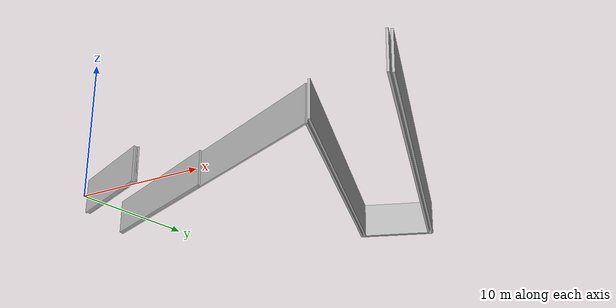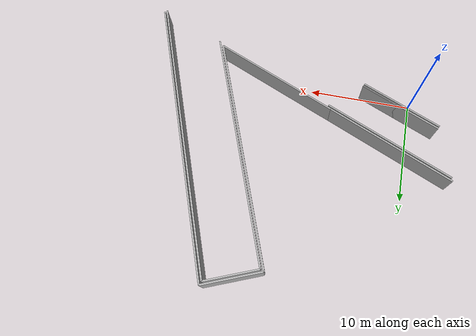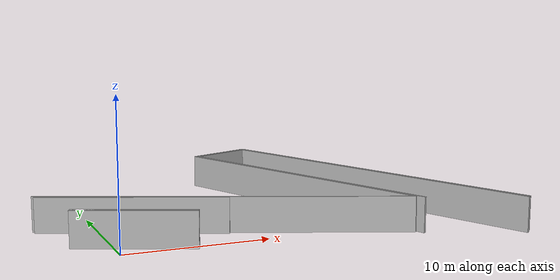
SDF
<?xml version="1.0" ?>
<sdf version="1.6">
  <model name="sps_0510">
    <pose frame="">0 0 0 0 -0 0</pose>
    <static>1</static>
    <self_collide>0</self_collide>
    <allow_auto_disable>0</allow_auto_disable>
    <link name="Wall76">
      <kinematic>0</kinematic>
      <gravity>1</gravity>
      <self_collide>0</self_collide>
      <collision name="collision">
        <geometry>
          <box>
            <size>5.00004 0.15 2.5</size>
          </box>
        </geometry>
        <pose frame="">0 0 0 0 -0 0</pose>
      </collision>
      <visual name="visual">
        <geometry>
          <box>
            <size>5.00004 0.15 2.5</size>
          </box>
        </geometry>
        <pose frame="">0 0 0 0 -0 0</pose>
        <cast_shadows>1</cast_shadows>
        <transparency>0.0</transparency>
      </visual>
      <pose frame="">13.8613 19.847 1.25 0 -0 0.385421</pose>
    </link>
    <link name="Wall400">
      <kinematic>0</kinematic>
      <gravity>1</gravity>
      <self_collide>0</self_collide>
      <collision name="collision">
        <geometry>
          <box>
            <size>23.3433 0.15 2.5</size>
          </box>
        </geometry>
        <pose frame="">0 0 0 0 -0 0</pose>
      </collision>
      <visual name="visual">
        <geometry>
          <box>
            <size>23.3433 0.15 2.5</size>
          </box>
        </geometry>
        <pose frame="">0 0 0 0 -0 0</pose>
        <cast_shadows>1</cast_shadows>
        <transparency>0.0</transparency>
      </visual>
      <pose frame="">15.9322 8.09151 1.25 0 -0 1.95618</pose>
    </link>
    <link name="Wall1602">
      <kinematic>0</kinematic>
      <gravity>1</gravity>
      <self_collide>0</self_collide>
      <collision name="collision">
        <geometry>
          <box>
            <size>22.9885 0.15 2.5</size>
          </box>
        </geometry>
        <pose frame="">0 0 0 0 -0 0</pose>
      </collision>
      <visual name="visual">
        <geometry>
          <box>
            <size>22.9885 0.15 2.5</size>
          </box>
        </geometry>
        <pose frame="">0 0 0 0 -0 0</pose>
        <cast_shadows>1</cast_shadows>
        <transparency>0.0</transparency>
      </visual>
      <pose frame="">15.5398 8.394 1.25 0 -0 1.9562</pose>
    </link>
    <link name="Wall2245">
      <kinematic>0</kinematic>
      <gravity>1</gravity>
      <self_collide>0</self_collide>
      <collision name="collision">
        <geometry>
          <box>
            <size>5.50043 0.15 2.5</size>
          </box>
        </geometry>
        <pose frame="">0 0 0 0 -0 0</pose>
      </collision>
      <visual name="visual">
        <geometry>
          <box>
            <size>5.50043 0.15 2.5</size>
          </box>
        </geometry>
        <pose frame="">0 0 0 0 -0 0</pose>
        <cast_shadows>1</cast_shadows>
        <transparency>0.0</transparency>
      </visual>
      <pose frame="">13.7674 20.0789 1.25 0 -0 0.385359</pose>
    </link>
    <link name="Wall2248">
      <kinematic>0</kinematic>
      <gravity>1</gravity>
      <self_collide>0</self_collide>
      <collision name="collision">
        <geometry>
          <box>
            <size>28.3194 0.15 2.5</size>
          </box>
        </geometry>
        <pose frame="">0 0 0 0 -0 0</pose>
      </collision>
      <visual name="visual">
        <geometry>
          <box>
            <size>28.3194 0.15 2.5</size>
          </box>
        </geometry>
        <pose frame="">0 0 0 0 -0 0</pose>
        <cast_shadows>1</cast_shadows>
        <transparency>0.0</transparency>
      </visual>
      <pose frame="">21.5011 7.66588 1.25 0 0 -1.18539</pose>
    </link>
    <link name="Wall2249">
      <kinematic>0</kinematic>
      <gravity>1</gravity>
      <self_collide>0</self_collide>
      <collision name="collision">
        <geometry>
          <box>
            <size>28.4649 0.15 2.5</size>
          </box>
        </geometry>
        <pose frame="">0 0 0 0 -0 0</pose>
      </collision>
      <visual name="visual">
        <geometry>
          <box>
            <size>28.4649 0.15 2.5</size>
          </box>
        </geometry>
        <pose frame="">0 0 0 0 -0 0</pose>
        <cast_shadows>1</cast_shadows>
        <transparency>0.0</transparency>
      </visual>
      <pose frame="">21.666 7.92409 1.25 0 0 -1.18542</pose>
    </link>
    <link name="Wall4317">
      <kinematic>0</kinematic>
      <gravity>1</gravity>
      <self_collide>0</self_collide>
      <collision name="collision">
        <geometry>
          <box>
            <size>13.2302 0.15 2.5</size>
          </box>
        </geometry>
        <pose frame="">0 0 0 0 -0 0</pose>
      </collision>
      <visual name="visual">
        <geometry>
          <box>
            <size>13.2302 0.15 2.5</size>
          </box>
        </geometry>
        <pose frame="">0 0 0 0 -0 0</pose>
        <cast_shadows>1</cast_shadows>
        <transparency>0.0</transparency>
      </visual>
      <pose frame="">2.08465 5.10698 1.25 0 0 -0.407209</pose>
    </link>
    <link name="Wall4324">
      <kinematic>0</kinematic>
      <gravity>1</gravity>
      <self_collide>0</self_collide>
      <collision name="collision">
        <geometry>
          <box>
            <size>8.26104 0.15 2.5</size>
          </box>
        </geometry>
        <pose frame="">0 0 0 0 -0 0</pose>
      </collision>
      <visual name="visual">
        <geometry>
          <box>
            <size>8.26104 0.15 2.5</size>
          </box>
        </geometry>
        <pose frame="">0 0 0 0 -0 0</pose>
        <cast_shadows>1</cast_shadows>
        <transparency>0.0</transparency>
      </visual>
      <pose frame="">1.28783 1.3492 1.25 0 -0 2.73539</pose>
    </link>
    <link name="Wall13868">
      <kinematic>0</kinematic>
      <gravity>1</gravity>
      <self_collide>0</self_collide>
      <collision name="collision">
        <geometry>
          <box>
            <size>23.3433 0.15 2.5</size>
          </box>
        </geometry>
        <pose frame="">0 0 0 0 -0 0</pose>
      </collision>
      <visual name="visual">
        <geometry>
          <box>
            <size>23.3433 0.15 2.5</size>
          </box>
        </geometry>
        <pose frame="">0 0 0 0 -0 0</pose>
        <cast_shadows>1</cast_shadows>
        <transparency>0.0</transparency>
      </visual>
      <pose frame="">15.9322 8.09151 1.25 0 -0 1.95618</pose>
    </link>
    <link name="Wall13869">
      <kinematic>0</kinematic>
      <gravity>1</gravity>
      <self_collide>0</self_collide>
      <collision name="collision">
        <geometry>
          <box>
            <size>5.00004 0.15 2.5</size>
          </box>
        </geometry>
        <pose frame="">0 0 0 0 -0 0</pose>
      </collision>
      <visual name="visual">
        <geometry>
          <box>
            <size>5.00004 0.15 2.5</size>
          </box>
        </geometry>
        <pose frame="">0 0 0 0 -0 0</pose>
        <cast_shadows>1</cast_shadows>
        <transparency>0.0</transparency>
      </visual>
      <pose frame="">13.8613 19.847 1.25 0 -0 0.385421</pose>
    </link>
    <link name="Wall18064">
      <kinematic>0</kinematic>
      <gravity>1</gravity>
      <self_collide>0</self_collide>
      <collision name="collision">
        <geometry>
          <box>
            <size>13.027 0.15 2.5</size>
          </box>
        </geometry>
        <pose frame="">0 0 0 0 -0 0</pose>
      </collision>
      <visual name="visual">
        <geometry>
          <box>
            <size>13.027 0.15 2.5</size>
          </box>
        </geometry>
        <pose frame="">0 0 0 0 -0 0</pose>
        <cast_shadows>1</cast_shadows>
        <transparency>0.0</transparency>
      </visual>
      <pose frame="">1.90655 5.455 1.25 0 0 -0.407285</pose>
    </link>
    <link name="Wall18065">
      <kinematic>0</kinematic>
      <gravity>1</gravity>
      <self_collide>0</self_collide>
      <collision name="collision">
        <geometry>
          <box>
            <size>13.0271 0.15 2.5</size>
          </box>
        </geometry>
        <pose frame="">0 0 0 0 -0 0</pose>
      </collision>
      <visual name="visual">
        <geometry>
          <box>
            <size>13.0271 0.15 2.5</size>
          </box>
        </geometry>
        <pose frame="">0 0 0 0 -0 0</pose>
        <cast_shadows>1</cast_shadows>
        <transparency>0.0</transparency>
      </visual>
      <pose frame="">13.874 0.308883 1.25 0 0 -0.404924</pose>
    </link>
    <link name="Wall37652">
      <kinematic>0</kinematic>
      <gravity>1</gravity>
      <self_collide>0</self_collide>
      <collision name="collision">
        <geometry>
          <box>
            <size>13.2302 0.15 2.5</size>
          </box>
        </geometry>
        <pose frame="">0 0 0 0 -0 0</pose>
      </collision>
      <visual name="visual">
        <geometry>
          <box>
            <size>13.2302 0.15 2.5</size>
          </box>
        </geometry>
        <pose frame="">0 0 0 0 -0 0</pose>
        <cast_shadows>1</cast_shadows>
        <transparency>0.0</transparency>
      </visual>
      <pose frame="">2.08465 5.10698 1.25 0 0 -0.407209</pose>
    </link>
    <link name="Wall37873">
      <kinematic>0</kinematic>
      <gravity>1</gravity>
      <self_collide>0</self_collide>
      <collision name="collision">
        <geometry>
          <box>
            <size>8.26154 0.15 2.5</size>
          </box>
        </geometry>
        <pose frame="">0 0 0 0 -0 0</pose>
      </collision>
      <visual name="visual">
        <geometry>
          <box>
            <size>8.26154 0.15 2.5</size>
          </box>
        </geometry>
        <pose frame="">0 0 0 0 -0 0</pose>
        <cast_shadows>1</cast_shadows>
        <transparency>0.0</transparency>
      </visual>
      <pose frame="">1.18725 1.12041 1.25 0 0 -0.406236</pose>
    </link>
    <link name="Wall37956">
      <kinematic>0</kinematic>
      <gravity>1</gravity>
      <self_collide>0</self_collide>
      <collision name="collision">
        <geometry>
          <box>
            <size>8.26104 0.15 2.5</size>
          </box>
        </geometry>
        <pose frame="">0 0 0 0 -0 0</pose>
      </collision>
      <visual name="visual">
        <geometry>
          <box>
            <size>8.26104 0.15 2.5</size>
          </box>
        </geometry>
        <pose frame="">0 0 0 0 -0 0</pose>
        <cast_shadows>1</cast_shadows>
        <transparency>0.0</transparency>
      </visual>
      <pose frame="">1.28783 1.3492 1.25 0 0 -0.406206</pose>
    </link>
  </model>
</sdf>
